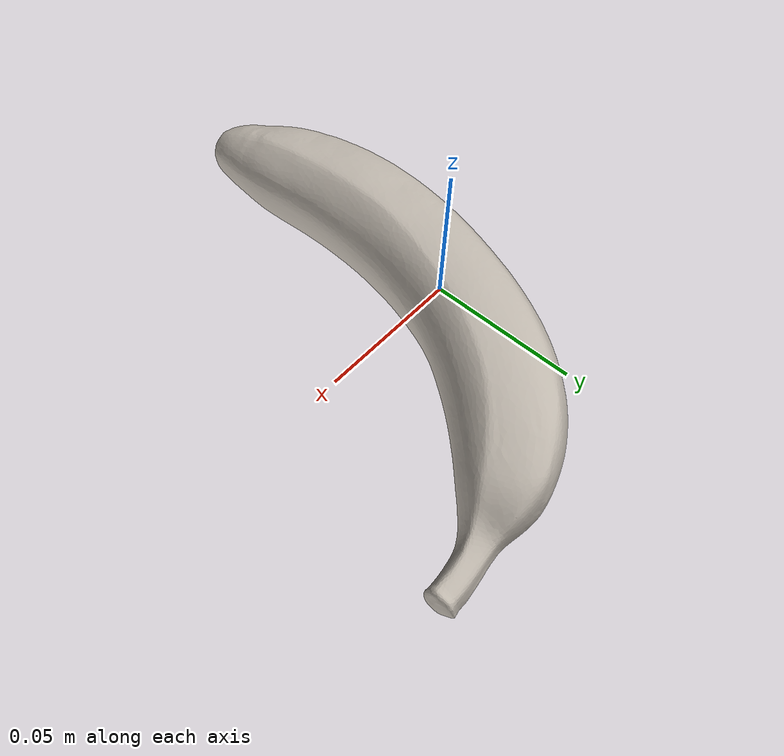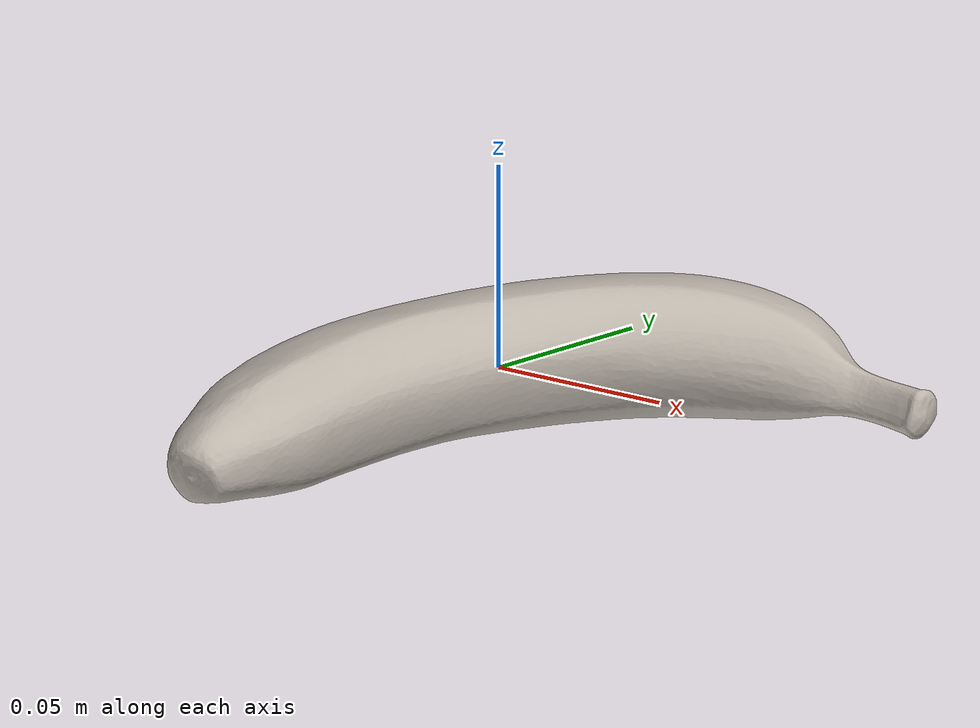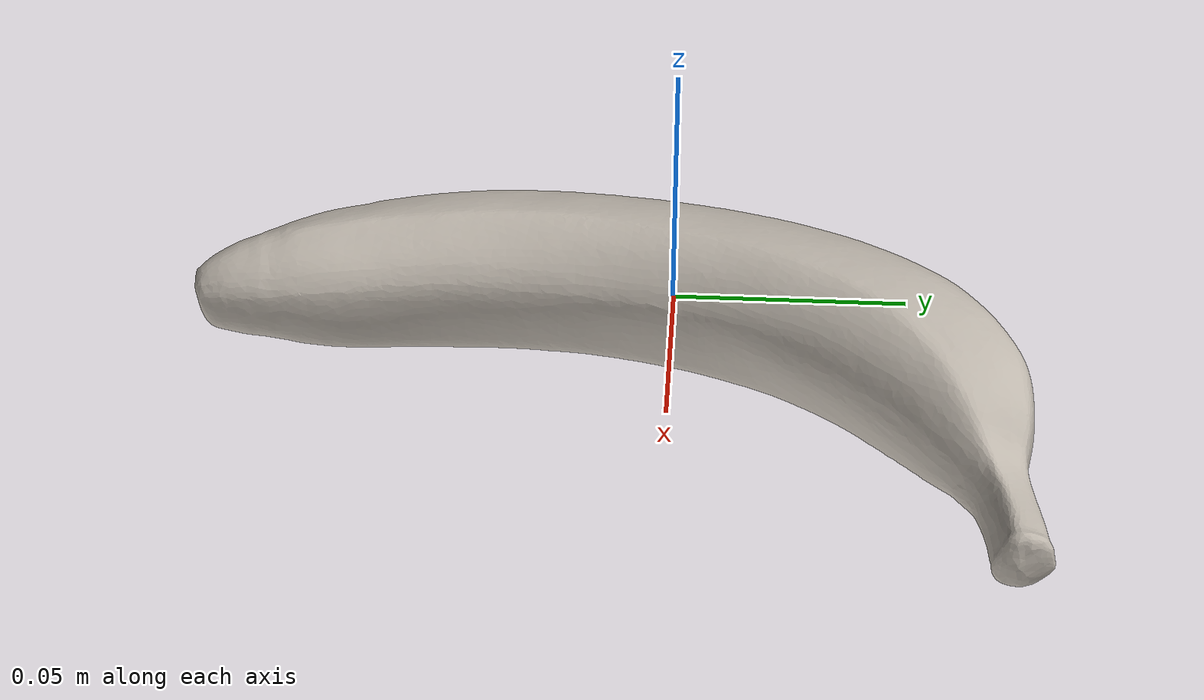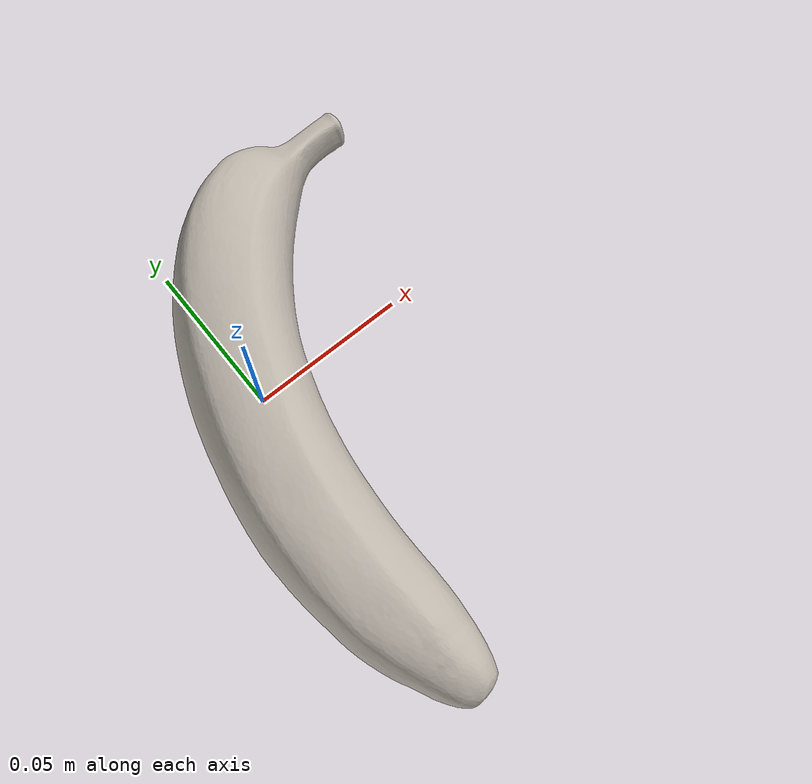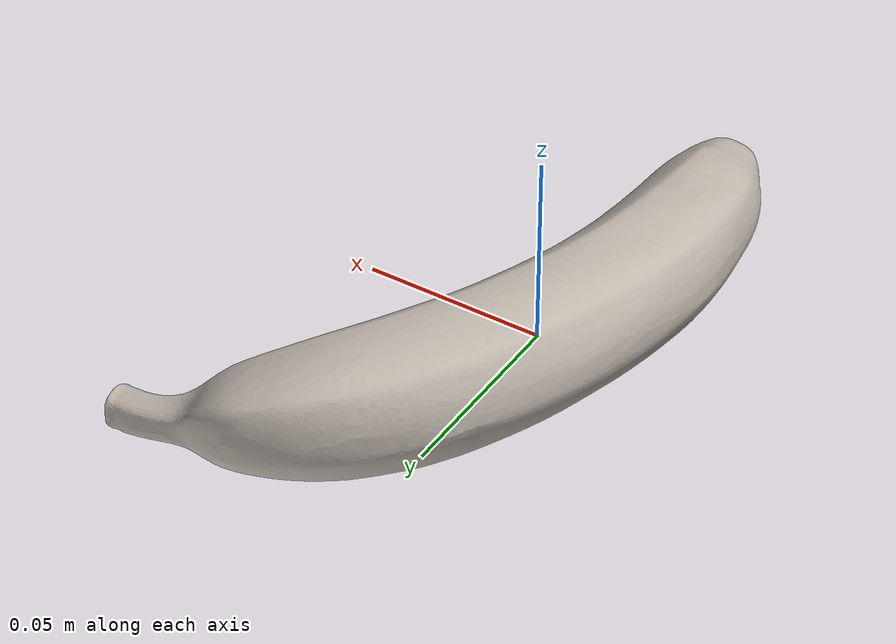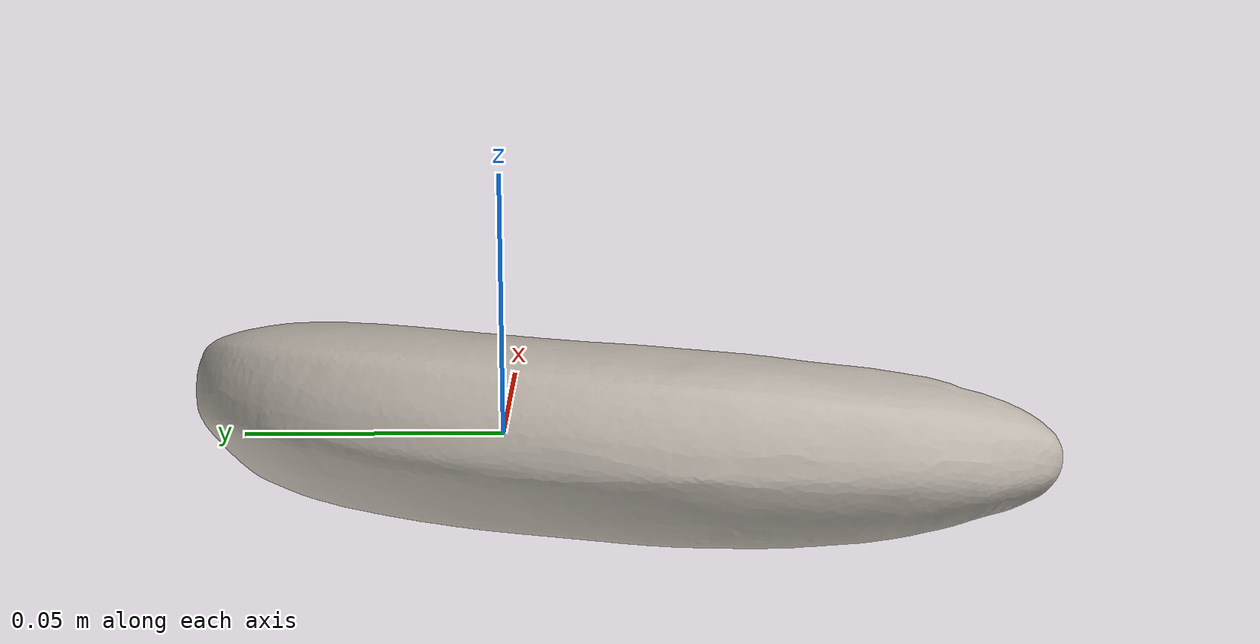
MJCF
<mujoco model="textured_centered">
  <default>
    <default class="visual">
      <geom group="2" type="mesh" contype="0" conaffinity="0"/>
    </default>
    <default class="collision">
      <geom group="3" type="mesh"/>
    </default>
  </default>
  <asset>
    <texture type="2d" name="texture_map" file="texture_map.png"/>
    <material name="material_0" texture="texture_map" specular="0.0" shininess="0.0"/>
    <mesh file="textured_centered.obj"/>
    <mesh file="textured_centered_collision_0.obj"/>
    <mesh file="textured_centered_collision_1.obj"/>
    <mesh file="textured_centered_collision_2.obj"/>
    <mesh file="textured_centered_collision_3.obj"/>
    <mesh file="textured_centered_collision_4.obj"/>
    <mesh file="textured_centered_collision_5.obj"/>
    <mesh file="textured_centered_collision_6.obj"/>
    <mesh file="textured_centered_collision_7.obj"/>
    <mesh file="textured_centered_collision_8.obj"/>
    <mesh file="textured_centered_collision_9.obj"/>
    <mesh file="textured_centered_collision_10.obj"/>
  </asset>
  <worldbody>
    <body name="textured_centered">
      <geom material="material_0" mesh="textured_centered" class="visual"/>
      <geom mesh="textured_centered_collision_0" rgba="0.05274969289786258 0.9083258559574404 0.8366136584906729 1" class="collision"/>
      <geom mesh="textured_centered_collision_1" rgba="0.29133686411613724 0.06539073086540725 0.9971320159214841 1" class="collision"/>
      <geom mesh="textured_centered_collision_2" rgba="0.002515372498583246 0.16738072219833489 0.053264740608698236 1" class="collision"/>
      <geom mesh="textured_centered_collision_3" rgba="0.4465270850607532 0.8960410791738698 0.04732904691670148 1" class="collision"/>
      <geom mesh="textured_centered_collision_4" rgba="0.3807484385643327 0.6121132240088861 0.11325277036936199 1" class="collision"/>
      <geom mesh="textured_centered_collision_5" rgba="0.6294032198364862 0.30445961512427977 0.7518941012250479 1" class="collision"/>
      <geom mesh="textured_centered_collision_6" rgba="0.7352061102442821 0.3377444723951831 0.5225823789619671 1" class="collision"/>
      <geom mesh="textured_centered_collision_7" rgba="0.9147361746912092 0.043340195332966513 0.46444951891502784 1" class="collision"/>
      <geom mesh="textured_centered_collision_8" rgba="0.4543309478412312 0.7609518814322325 0.967267516200782 1" class="collision"/>
      <geom mesh="textured_centered_collision_9" rgba="0.11050948704140007 0.21331856949594896 0.4664737039719655 1" class="collision"/>
      <geom mesh="textured_centered_collision_10" rgba="0.04443730783060984 0.7808439644729769 0.44603680534965373 1" class="collision"/>
    </body>
  </worldbody>
</mujoco>
